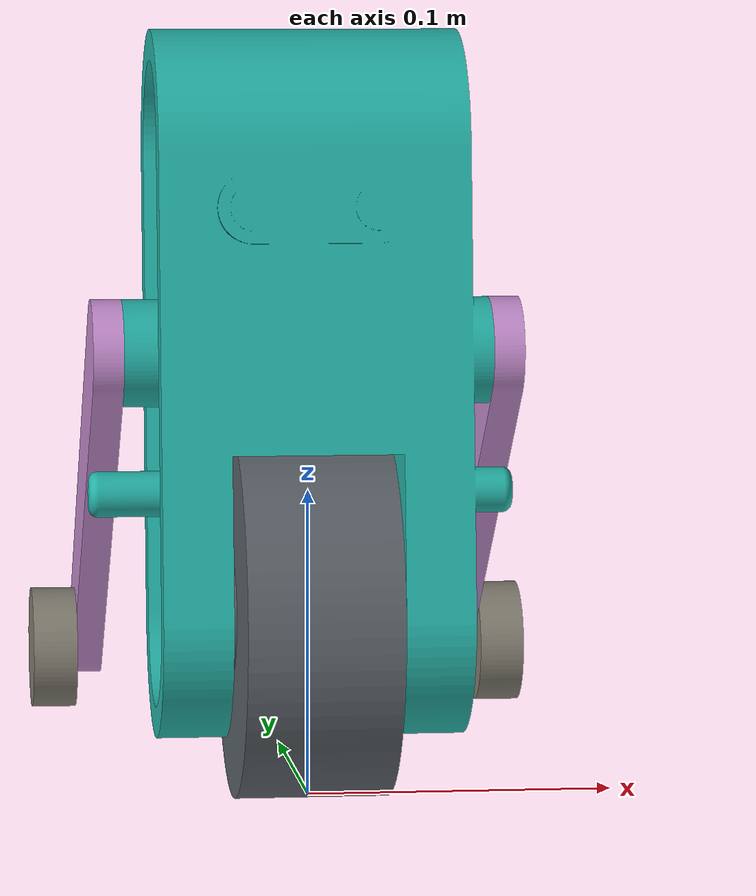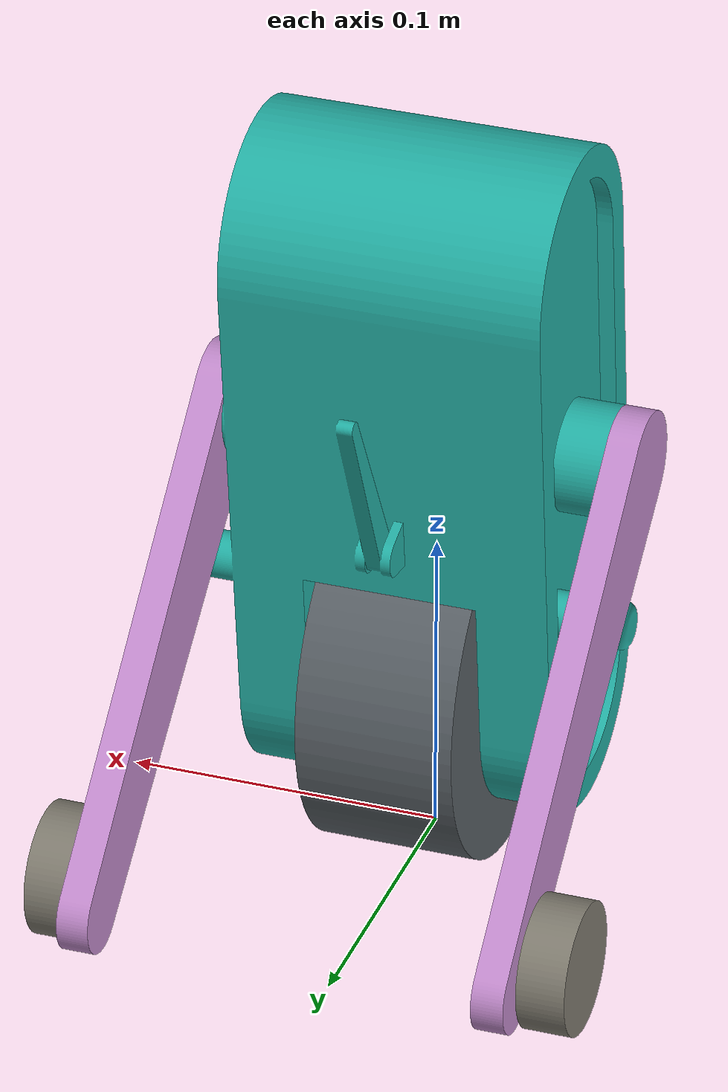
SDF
<?xml version="1.0" encoding="UTF-8"?>
<sdf version="1.6">
    <model name="wheelie_robot_stable">
        <link name="body_1">
            <frame name="body_1_frame">
                <pose>0 0 0 0 -0 0</pose>
            </frame>
            <visual name="body_1_0_body_visual">
                <pose>-3.46945e-18 -0.00635366 0.000337357 -0.106093 -0 0</pose>
                <geometry>
                    <mesh>
                        <uri>model://wheelie_robot_stable/meshes/body.stl</uri>
                    </mesh>
                </geometry>
                <material>
                    <ambient>0.141176 0.694118 0.65098 1</ambient>
                    <diffuse>0.141176 0.694118 0.65098 1</diffuse>
                    <specular>0.1 0.1 0.1 1</specular>
                    <emissive>0 0 0 0</emissive>
                </material>
            </visual>
            <collision name="body_1_0_body_collision">
                <pose>-3.46945e-18 -0.00635366 0.000337357 -0.106093 -0 0</pose>
                <geometry>
                    <mesh>
                        <uri>model://wheelie_robot_stable/meshes/body.stl</uri>
                    </mesh>
                </geometry>
            </collision>
            <inertial>
                <pose frame="body_1_frame">-8.82995e-18 0.0101931 0.155118 0 0 0</pose>
                <mass>1.10905</mass>
                <inertia>
                    <ixx>0.0041139</ixx>
                    <ixy>0</ixy>
                    <ixz>0</ixz>
                    <iyy>0.00453133</iyy>
                    <iyz>0.000314904</iyz>
                    <izz>0.00164713</izz>
                </inertia>
            </inertial>
        </link>
        <link name="wheel_1">
            <frame name="wheel_1_frame">
                <pose>0 0 0 0 -0 0</pose>
            </frame>
            <visual name="wheel_1_0_wheel_visual">
                <pose>0 0 0 0 -0 0</pose>
                <geometry>
                    <mesh>
                        <uri>model://wheelie_robot_stable/meshes/wheel.stl</uri>
                    </mesh>
                </geometry>
                <material>
                    <ambient>0.34902 0.376471 0.4 1</ambient>
                    <diffuse>0.34902 0.376471 0.4 1</diffuse>
                    <specular>0.1 0.1 0.1 1</specular>
                    <emissive>0 0 0 0</emissive>
                </material>
            </visual>
            <collision name="wheel_1_0_wheel_collision">
                <pose>0 0 0 0 -0 0</pose>
                <geometry>
                    <mesh>
                        <uri>model://wheelie_robot_stable/meshes/wheel.stl</uri>
                    </mesh>
                </geometry>
            </collision>
            <inertial>
                <pose frame="wheel_1_frame">1.15736e-19 -2.14806e-19 0.06 0 0 0</pose>
                <mass>0.771889</mass>
                <inertia>
                    <ixx>0.00137583</ixx>
                    <ixy>0</ixy>
                    <ixz>0</ixz>
                    <iyy>0.000852807</iyy>
                    <iyz>0</iyz>
                    <izz>0.000852807</izz>
                </inertia>
            </inertial>
        </link>
        <joint name="primarywheel" type="revolute">
            <pose>-0.0275 0 0.06 0 -0 0</pose>
            <parent>body_1</parent>
            <child>wheel_1</child>
            <axis>
                <xyz>-1 0 0</xyz>
                <limit>
                    <effort>1.5</effort>
                    <velocity>22</velocity>
                </limit>
            </axis>
        </joint>
        <link name="arm_1">
            <frame name="arm_1_frame">
                <pose>0 0 0 0 -0 0</pose>
            </frame>
            <visual name="arm_1_0_arm_visual">
                <pose>-0.065 0.0137691 -0.000399506 0.0328893 -0 0</pose>
                <geometry>
                    <mesh>
                        <uri>model://wheelie_robot_stable/meshes/arm.stl</uri>
                    </mesh>
                </geometry>
                <material>
                    <ambient>0.764706 0.545098 0.803922 1</ambient>
                    <diffuse>0.764706 0.545098 0.803922 1</diffuse>
                    <specular>0.1 0.1 0.1 1</specular>
                    <emissive>0 0 0 0</emissive>
                </material>
            </visual>
            <collision name="arm_1_0_arm_collision">
                <pose>-0.065 0.0137691 -0.000399506 0.0328893 -0 0</pose>
                <geometry>
                    <mesh>
                        <uri>model://wheelie_robot_stable/meshes/arm.stl</uri>
                    </mesh>
                </geometry>
            </collision>
            <inertial>
                <pose frame="arm_1_frame">-0.065 0.0557815 0.0941688 0 0 0</pose>
                <mass>0.048397</mass>
                <inertia>
                    <ixx>0.000127497</ixx>
                    <ixy>0</ixy>
                    <ixz>0</ixz>
                    <iyy>7.63918e-05</iyy>
                    <iyz>5.88424e-05</iyz>
                    <izz>5.19119e-05</izz>
                </inertia>
            </inertial>
        </link>
        <link name="rearwheel_1">
            <frame name="rearwheel_1_frame">
                <pose>0 0 0 0 -0 0</pose>
            </frame>
            <visual name="rearwheel_1_0_rearwheel_visual">
                <pose>-0.0775 0.112729 0.0328726 0.0328893 -0 0</pose>
                <geometry>
                    <mesh>
                        <uri>model://wheelie_robot_stable/meshes/rearwheel.stl</uri>
                    </mesh>
                </geometry>
                <material>
                    <ambient>0.501961 0.486275 0.439216 1</ambient>
                    <diffuse>0.501961 0.486275 0.439216 1</diffuse>
                    <specular>0.1 0.1 0.1 1</specular>
                    <emissive>0 0 0 0</emissive>
                </material>
            </visual>
            <collision name="rearwheel_1_0_rearwheel_collision">
                <pose>-0.0775 0.112729 0.0328726 0.0328893 -0 0</pose>
                <geometry>
                    <mesh>
                        <uri>model://wheelie_robot_stable/meshes/rearwheel.stl</uri>
                    </mesh>
                </geometry>
            </collision>
            <inertial>
                <pose frame="rearwheel_1_frame">-0.0775 0.112729 0.0328726 0 0 0</pose>
                <mass>0.0270823</mass>
                <inertia>
                    <ixx>5.76458e-06</ixx>
                    <ixy>0</ixy>
                    <ixz>0</ixz>
                    <iyy>3.39008e-06</iyy>
                    <iyz>4.03222e-23</iyz>
                    <izz>3.39008e-06</izz>
                </inertia>
            </inertial>
        </link>
        <joint name="rightwheel" type="revolute">
            <pose>-0.07 0.112729 0.0328726 0.0328893 -0 0</pose>
            <parent>arm_1</parent>
            <child>rearwheel_1</child>
            <axis>
                <xyz>-1 0 0</xyz>
                <limit>
                    <effort>1.5</effort>
                    <velocity>22</velocity>
                </limit>
            </axis>
        </joint>
        <joint name="rightarm" type="revolute">
            <pose>-0.06 0.00900102 0.144522 0.0328893 -0 0</pose>
            <parent>body_1</parent>
            <child>arm_1</child>
            <axis>
                <xyz>1 0 0</xyz>
                <limit>
                    <effort>1.5</effort>
                    <velocity>22</velocity>
                </limit>
            </axis>
        </joint>
        <link name="arm_2">
            <frame name="arm_2_frame">
                <pose>0 0 0 0 -0 0</pose>
            </frame>
            <visual name="arm_2_0_arm_visual">
                <pose>0.065 0.0136041 -0.000404841 0.0317507 -0 0</pose>
                <geometry>
                    <mesh>
                        <uri>model://wheelie_robot_stable/meshes/arm.stl</uri>
                    </mesh>
                </geometry>
                <material>
                    <ambient>0.764706 0.545098 0.803922 1</ambient>
                    <diffuse>0.764706 0.545098 0.803922 1</diffuse>
                    <specular>0.1 0.1 0.1 1</specular>
                    <emissive>0 0 0 0</emissive>
                </material>
            </visual>
            <collision name="arm_2_0_arm_collision">
                <pose>0.065 0.0136041 -0.000404841 0.0317507 -0 0</pose>
                <geometry>
                    <mesh>
                        <uri>model://wheelie_robot_stable/meshes/arm.stl</uri>
                    </mesh>
                </geometry>
            </collision>
            <inertial>
                <pose frame="arm_2_frame">0.065 0.0557242 0.0941156 0 0 0</pose>
                <mass>0.048397</mass>
                <inertia>
                    <ixx>0.000127497</ixx>
                    <ixy>0</ixy>
                    <ixz>0</ixz>
                    <iyy>7.62578e-05</iyy>
                    <iyz>5.88702e-05</iyz>
                    <izz>5.20459e-05</izz>
                </inertia>
            </inertial>
        </link>
        <link name="rearwheel_2">
            <frame name="rearwheel_2_frame">
                <pose>0 0 0 0 -0 0</pose>
            </frame>
            <visual name="rearwheel_2_0_rearwheel_visual">
                <pose>0.0775 0.112601 0.0327546 0.0317507 -0 0</pose>
                <geometry>
                    <mesh>
                        <uri>model://wheelie_robot_stable/meshes/rearwheel.stl</uri>
                    </mesh>
                </geometry>
                <material>
                    <ambient>0.501961 0.486275 0.439216 1</ambient>
                    <diffuse>0.501961 0.486275 0.439216 1</diffuse>
                    <specular>0.1 0.1 0.1 1</specular>
                    <emissive>0 0 0 0</emissive>
                </material>
            </visual>
            <collision name="rearwheel_2_0_rearwheel_collision">
                <pose>0.0775 0.112601 0.0327546 0.0317507 -0 0</pose>
                <geometry>
                    <mesh>
                        <uri>model://wheelie_robot_stable/meshes/rearwheel.stl</uri>
                    </mesh>
                </geometry>
            </collision>
            <inertial>
                <pose frame="rearwheel_2_frame">0.0775 0.112601 0.0327546 0 0 0</pose>
                <mass>0.0270823</mass>
                <inertia>
                    <ixx>5.76458e-06</ixx>
                    <ixy>0</ixy>
                    <ixz>0</ixz>
                    <iyy>3.39008e-06</iyy>
                    <iyz>3.30605e-23</iyz>
                    <izz>3.39008e-06</izz>
                </inertia>
            </inertial>
        </link>
        <joint name="leftwheel" type="revolute">
            <pose>0.07 0.112601 0.0327546 0.0317507 -0 0</pose>
            <parent>arm_2</parent>
            <child>rearwheel_2</child>
            <axis>
                <xyz>-1 0 0</xyz>
                <limit>
                    <effort>1.5</effort>
                    <velocity>22</velocity>
                </limit>
            </axis>
        </joint>
        <joint name="leftarm" type="revolute">
            <pose>0.06 0.00900102 0.144522 0.0317507 -0 0</pose>
            <parent>body_1</parent>
            <child>arm_2</child>
            <axis>
                <xyz>-1 0 0</xyz>
                <limit>
                    <effort>1.5</effort>
                    <velocity>22</velocity>
                </limit>
            </axis>
        </joint>
    </model>
</sdf>
